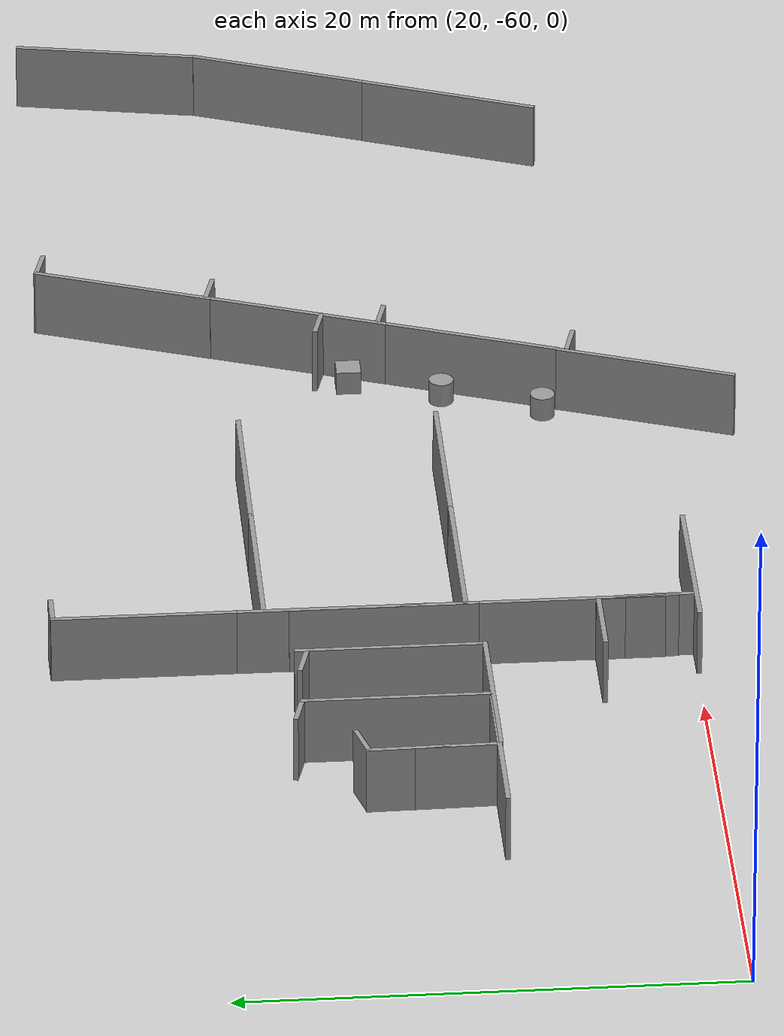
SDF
<sdf version="1.7">
 <world name="default">
  <model name="ground_plane">
   <static>1</static>
   <link name="link">
    <collision name="collision">
     <geometry><plane><normal>0 0 1</normal><size>100 100</size></plane></geometry>
     <surface>
      <contact><collide_bitmask>65535</collide_bitmask></contact>
      <friction><ode><mu>100</mu><mu2>50</mu2></ode></friction>
     </surface>
    </collision>
    <visual name="visual">
     <cast_shadows>0</cast_shadows>
     <geometry><plane><normal>0 0 1</normal><size>100 100</size></plane></geometry>
     <material>
      <script><uri>file://media/materials/scripts/gazebo.material</uri><name>Gazebo/Grey</name></script>
     </material>
    </visual>
   </link>
  </model>
  <model name="grey_wall_1_clone_clone_1_clone_clone_0_clone_clone_6">
   <static>1</static>
   <link name="link">
    <pose>0 0 1.4 0 -0 0</pose>
    <collision name="collision"><geometry><box><size>7.5 0.2 2.8</size></box></geometry></collision>
    <visual name="visual">
     <cast_shadows>0</cast_shadows>
     <geometry><box><size>7.5 0.2 2.8</size></box></geometry>
     <material>
      <script>
       <uri>model://grey_wall/materials/scripts</uri>
       <uri>model://grey_wall/materials/textures</uri>
       <name>vrc/grey_wall</name>
      </script>
     </material>
    </visual>
   </link>
   <pose>46.2485 -60.0519 0 0 -0 0</pose>
  </model>
  <model name="grey_wall_1_clone_clone_1_clone_clone_0_clone_clone_7_clone_clone_clone">
   <static>1</static>
   <link name="link">
    <pose>0 0 1.4 0 -0 0</pose>
    <collision name="collision"><geometry><box><size>7.5 0.2 2.8</size></box></geometry></collision>
    <visual name="visual">
     <cast_shadows>0</cast_shadows>
     <geometry><box><size>7.5 0.2 2.8</size></box></geometry>
     <material>
      <script>
       <uri>model://grey_wall/materials/scripts</uri>
       <uri>model://grey_wall/materials/textures</uri>
       <name>vrc/grey_wall</name>
      </script>
     </material>
    </visual>
   </link>
   <pose>33.1395 -51.3744 0 0 -0 0</pose>
  </model>
  <model name="half_grey_wall_clone_clone_0_clone_clone_clone_clone_0_clone_0_clone_clone_1_clone_clone_clone_1">
   <link name="link">
    <pose>0 0 1.4 0 -0 0</pose>
    <inertial>
     <mass>1</mass>
     <inertia><ixx>1</ixx><ixy>0</ixy><ixz>0</ixz><iyy>1</iyy><iyz>0</iyz><izz>1</izz></inertia>
    </inertial>
    <visual name="visual">
     <cast_shadows>0</cast_shadows>
     <geometry><box><size>3.3 0.2 2.8</size></box></geometry>
     <material>
      <script>
       <uri>model://grey_wall/materials/scripts</uri>
       <uri>model://grey_wall/materials/textures</uri>
       <name>vrc/grey_wall</name>
      </script>
      <shader type="pixel"><normal_map>__default__</normal_map></shader>
      <ambient>1 1 1 1</ambient>
      <diffuse>1 1 1 1</diffuse>
      <specular>0 0 0 1</specular>
      <emissive>0 0 0 1</emissive>
     </material>
    </visual>
    <collision name="collision">
     <geometry><box><size>3.3 0.2 2.8</size></box></geometry>
     <surface>
      <friction>
       <ode><mu>1</mu><mu2>1</mu2><fdir1>0 0 0</fdir1><slip1>0</slip1><slip2>0</slip2></ode>
       <torsional>
        <coefficient>1</coefficient>
        <patch_radius>0</patch_radius>
        <surface_radius>0</surface_radius>
        <use_patch_radius>1</use_patch_radius>
        <ode><slip>0</slip></ode>
       </torsional>
      </friction>
      <bounce><restitution_coefficient>0</restitution_coefficient><threshold>1e+06</threshold></bounce>
      <contact>
       <collide_without_contact>0</collide_without_contact>
       <collide_without_contact_bitmask>1</collide_without_contact_bitmask>
       <collide_bitmask>1</collide_bitmask>
       <ode>
        <soft_cfm>0</soft_cfm>
        <soft_erp>0.2</soft_erp>
        <kp>1e+13</kp>
        <kd>1</kd>
        <max_vel>0.01</max_vel>
        <min_depth>0</min_depth>
       </ode>
       <bullet>
        <split_impulse>1</split_impulse>
        <split_impulse_penetration_threshold>-0.01</split_impulse_penetration_threshold>
        <soft_cfm>0</soft_cfm>
        <soft_erp>0.2</soft_erp>
        <kp>1e+13</kp>
        <kd>1</kd>
       </bullet>
      </contact>
     </surface>
    </collision>
   </link>
   <static>1</static>
   <pose>43.9968 -58.4516 -0 0 0 -1.5482</pose>
  </model>
  <model name="half_grey_wall_clone_clone_0_clone_clone_clone_clone_0_clone_0_clone_clone_1_clone_clone_clone_2">
   <link name="link">
    <pose>0 0 1.4 0 -0 0</pose>
    <inertial>
     <mass>1</mass>
     <inertia><ixx>1</ixx><ixy>0</ixy><ixz>0</ixz><iyy>1</iyy><iyz>0</iyz><izz>1</izz></inertia>
    </inertial>
    <visual name="visual">
     <cast_shadows>0</cast_shadows>
     <geometry><box><size>3.3 0.2 2.8</size></box></geometry>
     <material>
      <script>
       <uri>model://grey_wall/materials/scripts</uri>
       <uri>model://grey_wall/materials/textures</uri>
       <name>vrc/grey_wall</name>
      </script>
      <shader type="pixel"><normal_map>__default__</normal_map></shader>
      <ambient>1 1 1 1</ambient>
      <diffuse>1 1 1 1</diffuse>
      <specular>0 0 0 1</specular>
      <emissive>0 0 0 1</emissive>
     </material>
    </visual>
    <collision name="collision">
     <geometry><box><size>3.3 0.2 2.8</size></box></geometry>
     <surface>
      <friction>
       <ode><mu>1</mu><mu2>1</mu2><fdir1>0 0 0</fdir1><slip1>0</slip1><slip2>0</slip2></ode>
       <torsional>
        <coefficient>1</coefficient>
        <patch_radius>0</patch_radius>
        <surface_radius>0</surface_radius>
        <use_patch_radius>1</use_patch_radius>
        <ode><slip>0</slip></ode>
       </torsional>
      </friction>
      <bounce><restitution_coefficient>0</restitution_coefficient><threshold>1e+06</threshold></bounce>
      <contact>
       <collide_without_contact>0</collide_without_contact>
       <collide_without_contact_bitmask>1</collide_without_contact_bitmask>
       <collide_bitmask>1</collide_bitmask>
       <ode>
        <soft_cfm>0</soft_cfm>
        <soft_erp>0.2</soft_erp>
        <kp>1e+13</kp>
        <kd>1</kd>
        <max_vel>0.01</max_vel>
        <min_depth>0</min_depth>
       </ode>
       <bullet>
        <split_impulse>1</split_impulse>
        <split_impulse_penetration_threshold>-0.01</split_impulse_penetration_threshold>
        <soft_cfm>0</soft_cfm>
        <soft_erp>0.2</soft_erp>
        <kp>1e+13</kp>
        <kd>1</kd>
       </bullet>
      </contact>
     </surface>
    </collision>
   </link>
   <static>1</static>
   <pose>43.9468 -57.7056 -0 0 0 -1.5482</pose>
  </model>
  <model name="grey_wall_0_clone_0_clone_clone_clone_0_clone_clone_0_clone_4_clone_0">
   <static>1</static>
   <link name="link">
    <pose>0 0 1.4 0 -0 0</pose>
    <collision name="collision"><geometry><box><size>7.5 0.2 2.8</size></box></geometry></collision>
    <visual name="visual">
     <cast_shadows>0</cast_shadows>
     <geometry><box><size>7.5 0.2 2.8</size></box></geometry>
     <material>
      <script>
       <uri>model://grey_wall/materials/scripts</uri>
       <uri>model://grey_wall/materials/textures</uri>
       <name>vrc/grey_wall</name>
      </script>
     </material>
    </visual>
   </link>
   <pose>43.9361 -55.0752 0 0 -0 1.5708</pose>
  </model>
  <model name="grey_wall_1_clone_clone_1_clone_clone_0_clone_clone_7_clone_clone_clone_clone_0">
   <static>1</static>
   <link name="link">
    <pose>0 0 1.4 0 -0 0</pose>
    <collision name="collision"><geometry><box><size>7.5 0.2 2.8</size></box></geometry></collision>
    <visual name="visual">
     <cast_shadows>0</cast_shadows>
     <geometry><box><size>7.5 0.2 2.8</size></box></geometry>
     <material>
      <script>
       <uri>model://grey_wall/materials/scripts</uri>
       <uri>model://grey_wall/materials/textures</uri>
       <name>vrc/grey_wall</name>
      </script>
     </material>
    </visual>
   </link>
   <pose>37.2341 -51.4253 0 0 -0 0</pose>
  </model>
  <model name="grey_wall_0_clone_clone_clone_0_clone_clone_clone_0_clone_1_clone">
   <static>1</static>
   <link name="link">
    <pose>0 0 1.4 0 -0 0</pose>
    <collision name="collision"><geometry><box><size>7.5 0.2 2.8</size></box></geometry></collision>
    <visual name="visual">
     <cast_shadows>0</cast_shadows>
     <geometry><box><size>7.5 0.2 2.8</size></box></geometry>
     <material>
      <script>
       <uri>model://grey_wall/materials/scripts</uri>
       <uri>model://grey_wall/materials/textures</uri>
       <name>vrc/grey_wall</name>
      </script>
     </material>
    </visual>
   </link>
   <pose>40.8766 -47.6667 0 0 -0 1.5708</pose>
  </model>
  <model name="grey_wall_0_clone_clone_clone_0_clone_clone_clone_0_clone_0_clone_clone_0">
   <static>1</static>
   <link name="link">
    <pose>0 0 1.4 0 -0 0</pose>
    <collision name="collision"><geometry><box><size>7.5 0.2 2.8</size></box></geometry></collision>
    <visual name="visual">
     <cast_shadows>0</cast_shadows>
     <geometry><box><size>7.5 0.2 2.8</size></box></geometry>
     <material>
      <script>
       <uri>model://grey_wall/materials/scripts</uri>
       <uri>model://grey_wall/materials/textures</uri>
       <name>vrc/grey_wall</name>
      </script>
     </material>
    </visual>
   </link>
   <pose>37.1366 -47.6419 0 0 -0 1.5708</pose>
  </model>
  <model name="half_grey_wall_clone_clone_0_clone_clone_clone_clone_0_clone_0_clone_clone_1_clone_clone_clone_0_clone_4">
   <link name="link">
    <pose>0 0 1.4 0 -0 0</pose>
    <inertial>
     <mass>1</mass>
     <inertia><ixx>1</ixx><ixy>0</ixy><ixz>0</ixz><iyy>1</iyy><iyz>0</iyz><izz>1</izz></inertia>
    </inertial>
    <visual name="visual">
     <cast_shadows>0</cast_shadows>
     <geometry><box><size>3.3 0.2 2.8</size></box></geometry>
     <material>
      <script>
       <uri>model://grey_wall/materials/scripts</uri>
       <uri>model://grey_wall/materials/textures</uri>
       <name>vrc/grey_wall</name>
      </script>
      <shader type="pixel"><normal_map>__default__</normal_map></shader>
      <ambient>1 1 1 1</ambient>
      <diffuse>1 1 1 1</diffuse>
      <specular>0 0 0 1</specular>
      <emissive>0 0 0 1</emissive>
     </material>
    </visual>
    <collision name="collision">
     <geometry><box><size>3.3 0.2 2.8</size></box></geometry>
     <surface>
      <friction>
       <ode><mu>1</mu><mu2>1</mu2><fdir1>0 0 0</fdir1><slip1>0</slip1><slip2>0</slip2></ode>
       <torsional>
        <coefficient>1</coefficient>
        <patch_radius>0</patch_radius>
        <surface_radius>0</surface_radius>
        <use_patch_radius>1</use_patch_radius>
        <ode><slip>0</slip></ode>
       </torsional>
      </friction>
      <bounce><restitution_coefficient>0</restitution_coefficient><threshold>1e+06</threshold></bounce>
      <contact>
       <collide_without_contact>0</collide_without_contact>
       <collide_without_contact_bitmask>1</collide_without_contact_bitmask>
       <collide_bitmask>1</collide_bitmask>
       <ode>
        <soft_cfm>0</soft_cfm>
        <soft_erp>0.2</soft_erp>
        <kp>1e+13</kp>
        <kd>1</kd>
        <max_vel>0.01</max_vel>
        <min_depth>0</min_depth>
       </ode>
       <bullet>
        <split_impulse>1</split_impulse>
        <split_impulse_penetration_threshold>-0.01</split_impulse_penetration_threshold>
        <soft_cfm>0</soft_cfm>
        <soft_erp>0.2</soft_erp>
        <kp>1e+13</kp>
        <kd>1</kd>
       </bullet>
      </contact>
     </surface>
    </collision>
   </link>
   <static>1</static>
   <pose>33.3861 -49.7236 -0 0 0 -1.5482</pose>
  </model>
  <model name="half_grey_wall_clone_clone_0_clone_clone_clone_clone_0_clone_0_clone_clone_1_clone_clone_clone_0_clone_5">
   <link name="link">
    <pose>0 0 1.4 0 -0 0</pose>
    <inertial>
     <mass>1</mass>
     <inertia><ixx>1</ixx><ixy>0</ixy><ixz>0</ixz><iyy>1</iyy><iyz>0</iyz><izz>1</izz></inertia>
    </inertial>
    <visual name="visual">
     <cast_shadows>0</cast_shadows>
     <geometry><box><size>3.3 0.2 2.8</size></box></geometry>
     <material>
      <script>
       <uri>model://grey_wall/materials/scripts</uri>
       <uri>model://grey_wall/materials/textures</uri>
       <name>vrc/grey_wall</name>
      </script>
      <shader type="pixel"><normal_map>__default__</normal_map></shader>
      <ambient>1 1 1 1</ambient>
      <diffuse>1 1 1 1</diffuse>
      <specular>0 0 0 1</specular>
      <emissive>0 0 0 1</emissive>
     </material>
    </visual>
    <collision name="collision">
     <geometry><box><size>3.3 0.2 2.8</size></box></geometry>
     <surface>
      <friction>
       <ode><mu>1</mu><mu2>1</mu2><fdir1>0 0 0</fdir1><slip1>0</slip1><slip2>0</slip2></ode>
       <torsional>
        <coefficient>1</coefficient>
        <patch_radius>0</patch_radius>
        <surface_radius>0</surface_radius>
        <use_patch_radius>1</use_patch_radius>
        <ode><slip>0</slip></ode>
       </torsional>
      </friction>
      <bounce><restitution_coefficient>0</restitution_coefficient><threshold>1e+06</threshold></bounce>
      <contact>
       <collide_without_contact>0</collide_without_contact>
       <collide_without_contact_bitmask>1</collide_without_contact_bitmask>
       <collide_bitmask>1</collide_bitmask>
       <ode>
        <soft_cfm>0</soft_cfm>
        <soft_erp>0.2</soft_erp>
        <kp>1e+13</kp>
        <kd>1</kd>
        <max_vel>0.01</max_vel>
        <min_depth>0</min_depth>
       </ode>
       <bullet>
        <split_impulse>1</split_impulse>
        <split_impulse_penetration_threshold>-0.01</split_impulse_penetration_threshold>
        <soft_cfm>0</soft_cfm>
        <soft_erp>0.2</soft_erp>
        <kp>1e+13</kp>
        <kd>1</kd>
       </bullet>
      </contact>
     </surface>
    </collision>
   </link>
   <static>1</static>
   <pose>33.3502 -47.8154 -0 0 0 -1.5482</pose>
  </model>
  <model name="grey_wall_0_clone_0_clone_clone_clone_0_clone_clone_clone_0_clone_clone_clone">
   <static>1</static>
   <link name="link">
    <pose>0 0 1.4 0 -0 0</pose>
    <collision name="collision"><geometry><box><size>7.5 0.2 2.8</size></box></geometry></collision>
    <visual name="visual">
     <cast_shadows>0</cast_shadows>
     <geometry><box><size>7.5 0.2 2.8</size></box></geometry>
     <material>
      <script>
       <uri>model://grey_wall/materials/scripts</uri>
       <uri>model://grey_wall/materials/textures</uri>
       <name>vrc/grey_wall</name>
      </script>
     </material>
    </visual>
   </link>
   <pose>43.9315 -47.6741 0 0 -0 1.5708</pose>
  </model>
  <model name="grey_wall_0_clone_0_clone_clone_clone_0_clone_clone_clone_0_clone_clone_clone_0">
   <static>1</static>
   <link name="link">
    <pose>0 0 1.4 0 -0 0</pose>
    <collision name="collision"><geometry><box><size>7.5 0.2 2.8</size></box></geometry></collision>
    <visual name="visual">
     <cast_shadows>0</cast_shadows>
     <geometry><box><size>7.5 0.2 2.8</size></box></geometry>
     <material>
      <script>
       <uri>model://grey_wall/materials/scripts</uri>
       <uri>model://grey_wall/materials/textures</uri>
       <name>vrc/grey_wall</name>
      </script>
     </material>
    </visual>
   </link>
   <pose>43.9405 -45.6127 0 0 -0 1.5708</pose>
  </model>
  <model name="half_grey_wall_clone_clone_clone_0_clone_clone_0_clone_clone_0_clone_0_clone_9_clone_clone">
   <link name="link">
    <pose>0 0 1.4 0 -0 0</pose>
    <inertial>
     <mass>1</mass>
     <inertia><ixx>1</ixx><ixy>0</ixy><ixz>0</ixz><iyy>1</iyy><iyz>0</iyz><izz>1</izz></inertia>
    </inertial>
    <visual name="visual">
     <cast_shadows>0</cast_shadows>
     <geometry><box><size>1.5 0.2 2.8</size></box></geometry>
     <material>
      <script>
       <uri>model://grey_wall/materials/scripts</uri>
       <uri>model://grey_wall/materials/textures</uri>
       <name>vrc/grey_wall</name>
      </script>
      <shader type="pixel"><normal_map>__default__</normal_map></shader>
      <ambient>1 1 1 1</ambient>
      <diffuse>1 1 1 1</diffuse>
      <specular>0 0 0 1</specular>
      <emissive>0 0 0 1</emissive>
     </material>
    </visual>
    <collision name="collision">
     <geometry><box><size>1.5 0.2 2.8</size></box></geometry>
     <surface>
      <friction>
       <ode><mu>1</mu><mu2>1</mu2><fdir1>0 0 0</fdir1><slip1>0</slip1><slip2>0</slip2></ode>
       <torsional>
        <coefficient>1</coefficient>
        <patch_radius>0</patch_radius>
        <surface_radius>0</surface_radius>
        <use_patch_radius>1</use_patch_radius>
        <ode><slip>0</slip></ode>
       </torsional>
      </friction>
      <bounce><restitution_coefficient>0</restitution_coefficient><threshold>1e+06</threshold></bounce>
      <contact>
       <collide_without_contact>0</collide_without_contact>
       <collide_without_contact_bitmask>1</collide_without_contact_bitmask>
       <collide_bitmask>1</collide_bitmask>
       <ode>
        <soft_cfm>0</soft_cfm>
        <soft_erp>0.2</soft_erp>
        <kp>1e+13</kp>
        <kd>1</kd>
        <max_vel>0.01</max_vel>
        <min_depth>0</min_depth>
       </ode>
       <bullet>
        <split_impulse>1</split_impulse>
        <split_impulse_penetration_threshold>-0.01</split_impulse_penetration_threshold>
        <soft_cfm>0</soft_cfm>
        <soft_erp>0.2</soft_erp>
        <kp>1e+13</kp>
        <kd>1</kd>
       </bullet>
      </contact>
     </surface>
    </collision>
   </link>
   <static>1</static>
   <pose>34.0742 -46.0681 0 0 0 -2.87494</pose>
  </model>
  <model name="half_grey_wall_clone_clone_clone_0_clone_clone_0_clone_clone_0_clone_0_clone_9_clone_0_clone">
   <link name="link">
    <pose>0 0 1.4 0 -0 0</pose>
    <inertial>
     <mass>1</mass>
     <inertia><ixx>1</ixx><ixy>0</ixy><ixz>0</ixz><iyy>1</iyy><iyz>0</iyz><izz>1</izz></inertia>
    </inertial>
    <visual name="visual">
     <cast_shadows>0</cast_shadows>
     <geometry><box><size>1.5 0.2 2.8</size></box></geometry>
     <material>
      <script>
       <uri>model://grey_wall/materials/scripts</uri>
       <uri>model://grey_wall/materials/textures</uri>
       <name>vrc/grey_wall</name>
      </script>
      <shader type="pixel"><normal_map>__default__</normal_map></shader>
      <ambient>1 1 1 1</ambient>
      <diffuse>1 1 1 1</diffuse>
      <specular>0 0 0 1</specular>
      <emissive>0 0 0 1</emissive>
     </material>
    </visual>
    <collision name="collision">
     <geometry><box><size>1.5 0.2 2.8</size></box></geometry>
     <surface>
      <friction>
       <ode><mu>1</mu><mu2>1</mu2><fdir1>0 0 0</fdir1><slip1>0</slip1><slip2>0</slip2></ode>
       <torsional>
        <coefficient>1</coefficient>
        <patch_radius>0</patch_radius>
        <surface_radius>0</surface_radius>
        <use_patch_radius>1</use_patch_radius>
        <ode><slip>0</slip></ode>
       </torsional>
      </friction>
      <bounce><restitution_coefficient>0</restitution_coefficient><threshold>1e+06</threshold></bounce>
      <contact>
       <collide_without_contact>0</collide_without_contact>
       <collide_without_contact_bitmask>1</collide_without_contact_bitmask>
       <collide_bitmask>1</collide_bitmask>
       <ode>
        <soft_cfm>0</soft_cfm>
        <soft_erp>0.2</soft_erp>
        <kp>1e+13</kp>
        <kd>1</kd>
        <max_vel>0.01</max_vel>
        <min_depth>0</min_depth>
       </ode>
       <bullet>
        <split_impulse>1</split_impulse>
        <split_impulse_penetration_threshold>-0.01</split_impulse_penetration_threshold>
        <soft_cfm>0</soft_cfm>
        <soft_erp>0.2</soft_erp>
        <kp>1e+13</kp>
        <kd>1</kd>
       </bullet>
      </contact>
     </surface>
    </collision>
   </link>
   <static>1</static>
   <pose>36.4844 -43.7961 0 0 -0 2.88811</pose>
  </model>
  <model name="half_grey_wall_clone_clone_clone_0_clone_clone_0_clone_clone_0_clone_0_clone_9_clone_0_clone_clone">
   <link name="link">
    <pose>0 0 1.4 0 -0 0</pose>
    <inertial>
     <mass>1</mass>
     <inertia><ixx>1</ixx><ixy>0</ixy><ixz>0</ixz><iyy>1</iyy><iyz>0</iyz><izz>1</izz></inertia>
    </inertial>
    <visual name="visual">
     <cast_shadows>0</cast_shadows>
     <geometry><box><size>1.5 0.2 2.8</size></box></geometry>
     <material>
      <script>
       <uri>model://grey_wall/materials/scripts</uri>
       <uri>model://grey_wall/materials/textures</uri>
       <name>vrc/grey_wall</name>
      </script>
      <shader type="pixel"><normal_map>__default__</normal_map></shader>
      <ambient>1 1 1 1</ambient>
      <diffuse>1 1 1 1</diffuse>
      <specular>0 0 0 1</specular>
      <emissive>0 0 0 1</emissive>
     </material>
    </visual>
    <collision name="collision">
     <geometry><box><size>1.5 0.2 2.8</size></box></geometry>
     <surface>
      <friction>
       <ode><mu>1</mu><mu2>1</mu2><fdir1>0 0 0</fdir1><slip1>0</slip1><slip2>0</slip2></ode>
       <torsional>
        <coefficient>1</coefficient>
        <patch_radius>0</patch_radius>
        <surface_radius>0</surface_radius>
        <use_patch_radius>1</use_patch_radius>
        <ode><slip>0</slip></ode>
       </torsional>
      </friction>
      <bounce><restitution_coefficient>0</restitution_coefficient><threshold>1e+06</threshold></bounce>
      <contact>
       <collide_without_contact>0</collide_without_contact>
       <collide_without_contact_bitmask>1</collide_without_contact_bitmask>
       <collide_bitmask>1</collide_bitmask>
       <ode>
        <soft_cfm>0</soft_cfm>
        <soft_erp>0.2</soft_erp>
        <kp>1e+13</kp>
        <kd>1</kd>
        <max_vel>0.01</max_vel>
        <min_depth>0</min_depth>
       </ode>
       <bullet>
        <split_impulse>1</split_impulse>
        <split_impulse_penetration_threshold>-0.01</split_impulse_penetration_threshold>
        <soft_cfm>0</soft_cfm>
        <soft_erp>0.2</soft_erp>
        <kp>1e+13</kp>
        <kd>1</kd>
       </bullet>
      </contact>
     </surface>
    </collision>
   </link>
   <static>1</static>
   <pose>40.0808 -44.2171 0 0 -0 2.88811</pose>
  </model>
  <model name="grey_wall_1_clone_clone_1_clone_clone_0_clone_clone_6_clone_0">
   <static>1</static>
   <link name="link">
    <pose>0 0 1.4 0 -0 0</pose>
    <collision name="collision"><geometry><box><size>7.5 0.2 2.8</size></box></geometry></collision>
    <visual name="visual">
     <cast_shadows>0</cast_shadows>
     <geometry><box><size>7.5 0.2 2.8</size></box></geometry>
     <material>
      <script>
       <uri>model://grey_wall/materials/scripts</uri>
       <uri>model://grey_wall/materials/textures</uri>
       <name>vrc/grey_wall</name>
      </script>
     </material>
    </visual>
   </link>
   <pose>47.6364 -50.904 0 0 -0 0</pose>
  </model>
  <model name="grey_wall_1_clone_clone_1_clone_clone_0_clone_clone_6_clone_1">
   <static>1</static>
   <link name="link">
    <pose>0 0 1.4 0 -0 0</pose>
    <collision name="collision"><geometry><box><size>7.5 0.2 2.8</size></box></geometry></collision>
    <visual name="visual">
     <cast_shadows>0</cast_shadows>
     <geometry><box><size>7.5 0.2 2.8</size></box></geometry>
     <material>
      <script>
       <uri>model://grey_wall/materials/scripts</uri>
       <uri>model://grey_wall/materials/textures</uri>
       <name>vrc/grey_wall</name>
      </script>
     </material>
    </visual>
   </link>
   <pose>55.0716 -50.8995 0 0 -0 0</pose>
  </model>
  <model name="grey_wall_1_clone_clone_1_clone_clone_0_clone_clone_6_clone_0_clone">
   <static>1</static>
   <link name="link">
    <pose>0 0 1.4 0 -0 0</pose>
    <collision name="collision"><geometry><box><size>7.5 0.2 2.8</size></box></geometry></collision>
    <visual name="visual">
     <cast_shadows>0</cast_shadows>
     <geometry><box><size>7.5 0.2 2.8</size></box></geometry>
     <material>
      <script>
       <uri>model://grey_wall/materials/scripts</uri>
       <uri>model://grey_wall/materials/textures</uri>
       <name>vrc/grey_wall</name>
      </script>
     </material>
    </visual>
   </link>
   <pose>54.9915 -42.9145 0 0 -0 0</pose>
  </model>
  <model name="grey_wall_0_clone_0_clone_clone_clone_0_clone_clone_clone_0_clone_clone_clone_0_clone">
   <static>1</static>
   <link name="link">
    <pose>0 0 1.4 0 -0 0</pose>
    <collision name="collision"><geometry><box><size>7.5 0.2 2.8</size></box></geometry></collision>
    <visual name="visual">
     <cast_shadows>0</cast_shadows>
     <geometry><box><size>7.5 0.2 2.8</size></box></geometry>
     <material>
      <script>
       <uri>model://grey_wall/materials/scripts</uri>
       <uri>model://grey_wall/materials/textures</uri>
       <name>vrc/grey_wall</name>
      </script>
     </material>
    </visual>
   </link>
   <pose>43.9425 -38.2688 0 0 -0 1.5708</pose>
  </model>
  <model name="half_grey_wall_clone_clone_clone_0_clone_clone_0_clone_clone_0_clone_0_clone_10">
   <link name="link">
    <pose>0 0 1.4 0 -0 0</pose>
    <inertial>
     <mass>1</mass>
     <inertia><ixx>1</ixx><ixy>0</ixy><ixz>0</ixz><iyy>1</iyy><iyz>0</iyz><izz>1</izz></inertia>
    </inertial>
    <visual name="visual">
     <cast_shadows>0</cast_shadows>
     <geometry><box><size>1.5 0.2 2.8</size></box></geometry>
     <material>
      <script>
       <uri>model://grey_wall/materials/scripts</uri>
       <uri>model://grey_wall/materials/textures</uri>
       <name>vrc/grey_wall</name>
      </script>
      <shader type="pixel"><normal_map>__default__</normal_map></shader>
      <ambient>1 1 1 1</ambient>
      <diffuse>1 1 1 1</diffuse>
      <specular>0 0 0 1</specular>
      <emissive>0 0 0 1</emissive>
     </material>
    </visual>
    <collision name="collision">
     <geometry><box><size>1.5 0.2 2.8</size></box></geometry>
     <surface>
      <friction>
       <ode><mu>1</mu><mu2>1</mu2><fdir1>0 0 0</fdir1><slip1>0</slip1><slip2>0</slip2></ode>
       <torsional>
        <coefficient>1</coefficient>
        <patch_radius>0</patch_radius>
        <surface_radius>0</surface_radius>
        <use_patch_radius>1</use_patch_radius>
        <ode><slip>0</slip></ode>
       </torsional>
      </friction>
      <bounce><restitution_coefficient>0</restitution_coefficient><threshold>1e+06</threshold></bounce>
      <contact>
       <collide_without_contact>0</collide_without_contact>
       <collide_without_contact_bitmask>1</collide_without_contact_bitmask>
       <collide_bitmask>1</collide_bitmask>
       <ode>
        <soft_cfm>0</soft_cfm>
        <soft_erp>0.2</soft_erp>
        <kp>1e+13</kp>
        <kd>1</kd>
        <max_vel>0.01</max_vel>
        <min_depth>0</min_depth>
       </ode>
       <bullet>
        <split_impulse>1</split_impulse>
        <split_impulse_penetration_threshold>-0.01</split_impulse_penetration_threshold>
        <soft_cfm>0</soft_cfm>
        <soft_erp>0.2</soft_erp>
        <kp>1e+13</kp>
        <kd>1</kd>
       </bullet>
      </contact>
     </surface>
    </collision>
   </link>
   <static>1</static>
   <pose>44.6459 -34.5967 0 0 0 -3.13942</pose>
  </model>
  <model name="grey_wall_0_clone_0_clone_clone_clone_0_clone_clone_0_clone_2_clone_clone">
   <static>1</static>
   <link name="link">
    <pose>0 0 1.4 0 -0 0</pose>
    <collision name="collision"><geometry><box><size>7.5 0.2 2.8</size></box></geometry></collision>
    <visual name="visual">
     <cast_shadows>0</cast_shadows>
     <geometry><box><size>7.5 0.2 2.8</size></box></geometry>
     <material>
      <script>
       <uri>model://grey_wall/materials/scripts</uri>
       <uri>model://grey_wall/materials/textures</uri>
       <name>vrc/grey_wall</name>
      </script>
     </material>
    </visual>
   </link>
   <pose>64.7266 -52.7944 0 0 -0 1.21472</pose>
  </model>
  <model name="half_grey_wall_clone_clone_clone_0_clone_clone_0_clone_clone_0_clone_0_clone_9_clone_0_clone_clone_clone_0">
   <link name="link">
    <pose>0 0 1.4 0 -0 0</pose>
    <inertial>
     <mass>1</mass>
     <inertia><ixx>1</ixx><ixy>0</ixy><ixz>0</ixz><iyy>1</iyy><iyz>0</iyz><izz>1</izz></inertia>
    </inertial>
    <visual name="visual">
     <cast_shadows>0</cast_shadows>
     <geometry><box><size>1.5 0.2 2.8</size></box></geometry>
     <material>
      <script>
       <uri>model://grey_wall/materials/scripts</uri>
       <uri>model://grey_wall/materials/textures</uri>
       <name>vrc/grey_wall</name>
      </script>
      <shader type="pixel"><normal_map>__default__</normal_map></shader>
      <ambient>1 1 1 1</ambient>
      <diffuse>1 1 1 1</diffuse>
      <specular>0 0 0 1</specular>
      <emissive>0 0 0 1</emissive>
     </material>
    </visual>
    <collision name="collision">
     <geometry><box><size>1.5 0.2 2.8</size></box></geometry>
     <surface>
      <friction>
       <ode><mu>1</mu><mu2>1</mu2><fdir1>0 0 0</fdir1><slip1>0</slip1><slip2>0</slip2></ode>
       <torsional>
        <coefficient>1</coefficient>
        <patch_radius>0</patch_radius>
        <surface_radius>0</surface_radius>
        <use_patch_radius>1</use_patch_radius>
        <ode><slip>0</slip></ode>
       </torsional>
      </friction>
      <bounce><restitution_coefficient>0</restitution_coefficient><threshold>1e+06</threshold></bounce>
      <contact>
       <collide_without_contact>0</collide_without_contact>
       <collide_without_contact_bitmask>1</collide_without_contact_bitmask>
       <collide_bitmask>1</collide_bitmask>
       <ode>
        <soft_cfm>0</soft_cfm>
        <soft_erp>0.2</soft_erp>
        <kp>1e+13</kp>
        <kd>1</kd>
        <max_vel>0.01</max_vel>
        <min_depth>0</min_depth>
       </ode>
       <bullet>
        <split_impulse>1</split_impulse>
        <split_impulse_penetration_threshold>-0.01</split_impulse_penetration_threshold>
        <soft_cfm>0</soft_cfm>
        <soft_erp>0.2</soft_erp>
        <kp>1e+13</kp>
        <kd>1</kd>
       </bullet>
      </contact>
     </surface>
    </collision>
   </link>
   <static>1</static>
   <pose>66.747 -49.2833 0 0 -0 2.88811</pose>
  </model>
  <model name="grey_wall_0_clone_0_clone_clone_clone_0_clone_clone_0_clone_2_clone_clone_0_clone_3_clone">
   <static>1</static>
   <link name="link">
    <pose>0 0 1.4 0 -0 0</pose>
    <collision name="collision"><geometry><box><size>7.5 0.2 2.8</size></box></geometry></collision>
    <visual name="visual">
     <cast_shadows>0</cast_shadows>
     <geometry><box><size>7.5 0.2 2.8</size></box></geometry>
     <material>
      <script>
       <uri>model://grey_wall/materials/scripts</uri>
       <uri>model://grey_wall/materials/textures</uri>
       <name>vrc/grey_wall</name>
      </script>
     </material>
    </visual>
   </link>
   <pose>67.2674 -45.9405 0 0 -0 1.21472</pose>
  </model>
  <model name="unit_cylinder_0_clone">
   <pose>69.912 -41.6721 0.499994 -0 -0 -0</pose>
   <link name="link">
    <inertial>
     <mass>1</mass>
     <inertia><ixx>0.145833</ixx><ixy>0</ixy><ixz>0</ixz><iyy>0.145833</iyy><iyz>0</iyz><izz>0.125</izz></inertia>
    </inertial>
    <collision name="collision">
     <geometry><cylinder><radius>0.5</radius><length>1</length></cylinder></geometry>
    </collision>
    <visual name="visual">
     <geometry><cylinder><radius>0.5</radius><length>1</length></cylinder></geometry>
     <material>
      <script><name>Gazebo/Grey</name><uri>file://media/materials/scripts/gazebo.material</uri></script>
     </material>
    </visual>
   </link>
  </model>
  <model name="grey_wall_0_clone_0_clone_clone_clone_0_clone_clone_0_clone_2_clone_clone_0_clone_3_clone_clone">
   <static>1</static>
   <link name="link">
    <pose>0 0 1.4 0 -0 0</pose>
    <collision name="collision"><geometry><box><size>7.5 0.2 2.8</size></box></geometry></collision>
    <visual name="visual">
     <cast_shadows>0</cast_shadows>
     <geometry><box><size>7.5 0.2 2.8</size></box></geometry>
     <material>
      <script>
       <uri>model://grey_wall/materials/scripts</uri>
       <uri>model://grey_wall/materials/textures</uri>
       <name>vrc/grey_wall</name>
      </script>
     </material>
    </visual>
   </link>
   <pose>69.8544 -38.9559 0 0 -0 1.21472</pose>
  </model>
  <model name="unit_cylinder_0_clone_clone">
   <pose>71.6283 -36.722 0.499994 -0 -0 -0</pose>
   <link name="link">
    <inertial>
     <mass>1</mass>
     <inertia><ixx>0.145833</ixx><ixy>0</ixy><ixz>0</ixz><iyy>0.145833</iyy><iyz>0</iyz><izz>0.125</izz></inertia>
    </inertial>
    <collision name="collision">
     <geometry><cylinder><radius>0.5</radius><length>1</length></cylinder></geometry>
    </collision>
    <visual name="visual">
     <geometry><cylinder><radius>0.5</radius><length>1</length></cylinder></geometry>
     <material>
      <script><name>Gazebo/Grey</name><uri>file://media/materials/scripts/gazebo.material</uri></script>
     </material>
    </visual>
   </link>
  </model>
  <model name="half_grey_wall_clone_clone_clone_0_clone_clone_0_clone_clone_0_clone_0_clone_9_clone_0_clone_clone_clone_2_clone_clone_clone">
   <link name="link">
    <pose>0 0 1.4 0 -0 0</pose>
    <inertial>
     <mass>1</mass>
     <inertia><ixx>1</ixx><ixy>0</ixy><ixz>0</ixz><iyy>1</iyy><iyz>0</iyz><izz>1</izz></inertia>
    </inertial>
    <visual name="visual">
     <cast_shadows>0</cast_shadows>
     <geometry><box><size>1.5 0.2 2.8</size></box></geometry>
     <material>
      <script>
       <uri>model://grey_wall/materials/scripts</uri>
       <uri>model://grey_wall/materials/textures</uri>
       <name>vrc/grey_wall</name>
      </script>
      <shader type="pixel"><normal_map>__default__</normal_map></shader>
      <ambient>1 1 1 1</ambient>
      <diffuse>1 1 1 1</diffuse>
      <specular>0 0 0 1</specular>
      <emissive>0 0 0 1</emissive>
     </material>
    </visual>
    <collision name="collision">
     <geometry><box><size>1.5 0.2 2.8</size></box></geometry>
     <surface>
      <friction>
       <ode><mu>1</mu><mu2>1</mu2><fdir1>0 0 0</fdir1><slip1>0</slip1><slip2>0</slip2></ode>
       <torsional>
        <coefficient>1</coefficient>
        <patch_radius>0</patch_radius>
        <surface_radius>0</surface_radius>
        <use_patch_radius>1</use_patch_radius>
        <ode><slip>0</slip></ode>
       </torsional>
      </friction>
      <bounce><restitution_coefficient>0</restitution_coefficient><threshold>1e+06</threshold></bounce>
      <contact>
       <collide_without_contact>0</collide_without_contact>
       <collide_without_contact_bitmask>1</collide_without_contact_bitmask>
       <collide_bitmask>1</collide_bitmask>
       <ode>
        <soft_cfm>0</soft_cfm>
        <soft_erp>0.2</soft_erp>
        <kp>1e+13</kp>
        <kd>1</kd>
        <max_vel>0.01</max_vel>
        <min_depth>0</min_depth>
       </ode>
       <bullet>
        <split_impulse>1</split_impulse>
        <split_impulse_penetration_threshold>-0.01</split_impulse_penetration_threshold>
        <soft_cfm>0</soft_cfm>
        <soft_erp>0.2</soft_erp>
        <kp>1e+13</kp>
        <kd>1</kd>
       </bullet>
      </contact>
     </surface>
    </collision>
   </link>
   <static>1</static>
   <pose>71.8066 -35.6472 0 0 -0 2.88811</pose>
  </model>
  <model name="half_grey_wall_clone_clone_clone_0_clone_clone_0_clone_clone_0_clone_0_clone_9_clone_0_clone_clone_clone_2_clone_clone_clone_clone">
   <link name="link">
    <pose>0 0 1.4 0 -0 0</pose>
    <inertial>
     <mass>1</mass>
     <inertia><ixx>1</ixx><ixy>0</ixy><ixz>0</ixz><iyy>1</iyy><iyz>0</iyz><izz>1</izz></inertia>
    </inertial>
    <visual name="visual">
     <cast_shadows>0</cast_shadows>
     <geometry><box><size>1.5 0.2 2.8</size></box></geometry>
     <material>
      <script>
       <uri>model://grey_wall/materials/scripts</uri>
       <uri>model://grey_wall/materials/textures</uri>
       <name>vrc/grey_wall</name>
      </script>
      <shader type="pixel"><normal_map>__default__</normal_map></shader>
      <ambient>1 1 1 1</ambient>
      <diffuse>1 1 1 1</diffuse>
      <specular>0 0 0 1</specular>
      <emissive>0 0 0 1</emissive>
     </material>
    </visual>
    <collision name="collision">
     <geometry><box><size>1.5 0.2 2.8</size></box></geometry>
     <surface>
      <friction>
       <ode><mu>1</mu><mu2>1</mu2><fdir1>0 0 0</fdir1><slip1>0</slip1><slip2>0</slip2></ode>
       <torsional>
        <coefficient>1</coefficient>
        <patch_radius>0</patch_radius>
        <surface_radius>0</surface_radius>
        <use_patch_radius>1</use_patch_radius>
        <ode><slip>0</slip></ode>
       </torsional>
      </friction>
      <bounce><restitution_coefficient>0</restitution_coefficient><threshold>1e+06</threshold></bounce>
      <contact>
       <collide_without_contact>0</collide_without_contact>
       <collide_without_contact_bitmask>1</collide_without_contact_bitmask>
       <collide_bitmask>1</collide_bitmask>
       <ode>
        <soft_cfm>0</soft_cfm>
        <soft_erp>0.2</soft_erp>
        <kp>1e+13</kp>
        <kd>1</kd>
        <max_vel>0.01</max_vel>
        <min_depth>0</min_depth>
       </ode>
       <bullet>
        <split_impulse>1</split_impulse>
        <split_impulse_penetration_threshold>-0.01</split_impulse_penetration_threshold>
        <soft_cfm>0</soft_cfm>
        <soft_erp>0.2</soft_erp>
        <kp>1e+13</kp>
        <kd>1</kd>
       </bullet>
      </contact>
     </surface>
    </collision>
   </link>
   <static>1</static>
   <pose>69.384 -42.4529 0 0 -0 2.88811</pose>
  </model>
  <model name="half_grey_wall_clone_clone_clone_0_clone_clone_0_clone_clone_0_clone_0_clone_9_clone_0_clone_clone_clone_0_clone_clone">
   <link name="link">
    <pose>0 0 1.4 0 -0 0</pose>
    <inertial>
     <mass>1</mass>
     <inertia><ixx>1</ixx><ixy>0</ixy><ixz>0</ixz><iyy>1</iyy><iyz>0</iyz><izz>1</izz></inertia>
    </inertial>
    <visual name="visual">
     <cast_shadows>0</cast_shadows>
     <geometry><box><size>1.5 0.2 2.8</size></box></geometry>
     <material>
      <script>
       <uri>model://grey_wall/materials/scripts</uri>
       <uri>model://grey_wall/materials/textures</uri>
       <name>vrc/grey_wall</name>
      </script>
      <shader type="pixel"><normal_map>__default__</normal_map></shader>
      <ambient>1 1 1 1</ambient>
      <diffuse>1 1 1 1</diffuse>
      <specular>0 0 0 1</specular>
      <emissive>0 0 0 1</emissive>
     </material>
    </visual>
    <collision name="collision">
     <geometry><box><size>1.5 0.2 2.8</size></box></geometry>
     <surface>
      <friction>
       <ode><mu>1</mu><mu2>1</mu2><fdir1>0 0 0</fdir1><slip1>0</slip1><slip2>0</slip2></ode>
       <torsional>
        <coefficient>1</coefficient>
        <patch_radius>0</patch_radius>
        <surface_radius>0</surface_radius>
        <use_patch_radius>1</use_patch_radius>
        <ode><slip>0</slip></ode>
       </torsional>
      </friction>
      <bounce><restitution_coefficient>0</restitution_coefficient><threshold>1e+06</threshold></bounce>
      <contact>
       <collide_without_contact>0</collide_without_contact>
       <collide_without_contact_bitmask>1</collide_without_contact_bitmask>
       <collide_bitmask>1</collide_bitmask>
       <ode>
        <soft_cfm>0</soft_cfm>
        <soft_erp>0.2</soft_erp>
        <kp>1e+13</kp>
        <kd>1</kd>
        <max_vel>0.01</max_vel>
        <min_depth>0</min_depth>
       </ode>
       <bullet>
        <split_impulse>1</split_impulse>
        <split_impulse_penetration_threshold>-0.01</split_impulse_penetration_threshold>
        <soft_cfm>0</soft_cfm>
        <soft_erp>0.2</soft_erp>
        <kp>1e+13</kp>
        <kd>1</kd>
       </bullet>
      </contact>
     </surface>
    </collision>
   </link>
   <static>1</static>
   <pose>66.2497 -46.6975 0 0 -0 2.88811</pose>
  </model>
  <model name="unit_box_1">
   <pose>65.677 -47.8735 0.499995 -1e-05 -0 5e-06</pose>
   <link name="link">
    <inertial>
     <mass>1</mass>
     <inertia>
      <ixx>0.166667</ixx>
      <ixy>0</ixy>
      <ixz>0</ixz>
      <iyy>0.166667</iyy>
      <iyz>0</iyz>
      <izz>0.166667</izz>
     </inertia>
    </inertial>
    <collision name="collision"><geometry><box><size>1 1 1</size></box></geometry></collision>
    <visual name="visual">
     <geometry><box><size>1 1 1</size></box></geometry>
     <material>
      <script><name>Gazebo/Grey</name><uri>file://media/materials/scripts/gazebo.material</uri></script>
     </material>
    </visual>
   </link>
  </model>
  <model name="unit_cylinder_clone">
   <pose>64.3733 -51.5821 0.499996 0 -0 0</pose>
   <link name="link">
    <inertial>
     <mass>1</mass>
     <inertia><ixx>0.145833</ixx><ixy>0</ixy><ixz>0</ixz><iyy>0.145833</iyy><iyz>0</iyz><izz>0.125</izz></inertia>
    </inertial>
    <collision name="collision">
     <geometry><cylinder><radius>0.5</radius><length>1</length></cylinder></geometry>
    </collision>
    <visual name="visual">
     <geometry><cylinder><radius>0.5</radius><length>1</length></cylinder></geometry>
     <material>
      <script><name>Gazebo/Grey</name><uri>file://media/materials/scripts/gazebo.material</uri></script>
     </material>
    </visual>
   </link>
  </model>
  <model name="unit_cylinder_clone_0">
   <pose>62.9339 -55.5972 0.499996 0 -0 0</pose>
   <link name="link">
    <inertial>
     <mass>1</mass>
     <inertia><ixx>0.145833</ixx><ixy>0</ixy><ixz>0</ixz><iyy>0.145833</iyy><iyz>0</iyz><izz>0.125</izz></inertia>
    </inertial>
    <collision name="collision">
     <geometry><cylinder><radius>0.5</radius><length>1</length></cylinder></geometry>
    </collision>
    <visual name="visual">
     <geometry><cylinder><radius>0.5</radius><length>1</length></cylinder></geometry>
     <material>
      <script><name>Gazebo/Grey</name><uri>file://media/materials/scripts/gazebo.material</uri></script>
     </material>
    </visual>
   </link>
  </model>
  <model name="half_grey_wall_clone_clone_clone_0_clone_clone_0_clone_clone_0_clone_0_clone_9_clone_0_clone_clone_clone_0_clone">
   <link name="link">
    <pose>0 0 1.4 0 -0 0</pose>
    <inertial>
     <mass>1</mass>
     <inertia><ixx>1</ixx><ixy>0</ixy><ixz>0</ixz><iyy>1</iyy><iyz>0</iyz><izz>1</izz></inertia>
    </inertial>
    <visual name="visual">
     <cast_shadows>0</cast_shadows>
     <geometry><box><size>1.5 0.2 2.8</size></box></geometry>
     <material>
      <script>
       <uri>model://grey_wall/materials/scripts</uri>
       <uri>model://grey_wall/materials/textures</uri>
       <name>vrc/grey_wall</name>
      </script>
      <shader type="pixel"><normal_map>__default__</normal_map></shader>
      <ambient>1 1 1 1</ambient>
      <diffuse>1 1 1 1</diffuse>
      <specular>0 0 0 1</specular>
      <emissive>0 0 0 1</emissive>
     </material>
    </visual>
    <collision name="collision">
     <geometry><box><size>1.5 0.2 2.8</size></box></geometry>
     <surface>
      <friction>
       <ode><mu>1</mu><mu2>1</mu2><fdir1>0 0 0</fdir1><slip1>0</slip1><slip2>0</slip2></ode>
       <torsional>
        <coefficient>1</coefficient>
        <patch_radius>0</patch_radius>
        <surface_radius>0</surface_radius>
        <use_patch_radius>1</use_patch_radius>
        <ode><slip>0</slip></ode>
       </torsional>
      </friction>
      <bounce><restitution_coefficient>0</restitution_coefficient><threshold>1e+06</threshold></bounce>
      <contact>
       <collide_without_contact>0</collide_without_contact>
       <collide_without_contact_bitmask>1</collide_without_contact_bitmask>
       <collide_bitmask>1</collide_bitmask>
       <ode>
        <soft_cfm>0</soft_cfm>
        <soft_erp>0.2</soft_erp>
        <kp>1e+13</kp>
        <kd>1</kd>
        <max_vel>0.01</max_vel>
        <min_depth>0</min_depth>
       </ode>
       <bullet>
        <split_impulse>1</split_impulse>
        <split_impulse_penetration_threshold>-0.01</split_impulse_penetration_threshold>
        <soft_cfm>0</soft_cfm>
        <soft_erp>0.2</soft_erp>
        <kp>1e+13</kp>
        <kd>1</kd>
       </bullet>
      </contact>
     </surface>
    </collision>
   </link>
   <static>1</static>
   <pose>64.1253 -56.7976 0 0 -0 2.88811</pose>
  </model>
  <model name="grey_wall_0_clone_0_clone_clone_clone_0_clone_clone_0_clone_2_clone_clone_clone_1">
   <static>1</static>
   <link name="link">
    <pose>0 0 1.4 0 -0 0</pose>
    <collision name="collision"><geometry><box><size>7.5 0.2 2.8</size></box></geometry></collision>
    <visual name="visual">
     <cast_shadows>0</cast_shadows>
     <geometry><box><size>7.5 0.2 2.8</size></box></geometry>
     <material>
      <script>
       <uri>model://grey_wall/materials/scripts</uri>
       <uri>model://grey_wall/materials/textures</uri>
       <name>vrc/grey_wall</name>
      </script>
     </material>
    </visual>
   </link>
   <pose>62.1181 -59.7084 0 0 -0 1.21472</pose>
  </model>
  <model name="grey_wall_1_clone_clone_1_clone_clone_0_clone_clone_6_clone_2_clone_0">
   <static>1</static>
   <link name="link">
    <pose>0 0 1.4 0 -0 0</pose>
    <collision name="collision"><geometry><box><size>7.5 0.2 2.8</size></box></geometry></collision>
    <visual name="visual">
     <cast_shadows>0</cast_shadows>
     <geometry><box><size>7.5 0.2 2.8</size></box></geometry>
     <material>
      <script>
       <uri>model://grey_wall/materials/scripts</uri>
       <uri>model://grey_wall/materials/textures</uri>
       <name>vrc/grey_wall</name>
      </script>
     </material>
    </visual>
   </link>
   <pose>47.6381 -42.9183 0 0 -0 0</pose>
  </model>
  <model name="grey_wall_1_clone_clone_1_clone_clone_0_clone_clone_clone_0_clone_4_clone_clone_0_clone_0_clone_2">
   <static>1</static>
   <link name="link">
    <pose>0 0 1.4 0 -0 0</pose>
    <collision name="collision"><geometry><box><size>7.5 0.2 2.8</size></box></geometry></collision>
    <visual name="visual">
     <cast_shadows>0</cast_shadows>
     <geometry><box><size>7.5 0.2 2.8</size></box></geometry>
     <material>
      <script>
       <uri>model://grey_wall/materials/scripts</uri>
       <uri>model://grey_wall/materials/textures</uri>
       <name>vrc/grey_wall</name>
      </script>
     </material>
    </visual>
   </link>
   <pose>84.7832 -53.5032 0 0 -0 1.20104</pose>
  </model>
  <model name="grey_wall_1_clone_clone_1_clone_clone_0_clone_clone_clone_0_clone_4_clone_clone_0_clone_0_clone_3">
   <static>1</static>
   <link name="link">
    <pose>0 0 1.4 0 -0 0</pose>
    <collision name="collision"><geometry><box><size>7.5 0.2 2.8</size></box></geometry></collision>
    <visual name="visual">
     <cast_shadows>0</cast_shadows>
     <geometry><box><size>7.5 0.2 2.8</size></box></geometry>
     <material>
      <script>
       <uri>model://grey_wall/materials/scripts</uri>
       <uri>model://grey_wall/materials/textures</uri>
       <name>vrc/grey_wall</name>
      </script>
     </material>
    </visual>
   </link>
   <pose>87.5054 -46.5132 0 0 -0 1.20104</pose>
  </model>
  <model name="grey_wall_0_clone_0_clone_clone_clone_0_clone_clone_0_clone_2_clone_clone_clone_0_clone_4_clone_clone_0">
   <static>1</static>
   <link name="link">
    <pose>0 0 1.4 0 -0 0</pose>
    <collision name="collision"><geometry><box><size>7.5 0.2 2.8</size></box></geometry></collision>
    <visual name="visual">
     <cast_shadows>0</cast_shadows>
     <geometry><box><size>7.5 0.2 2.8</size></box></geometry>
     <material>
      <script>
       <uri>model://grey_wall/materials/scripts</uri>
       <uri>model://grey_wall/materials/textures</uri>
       <name>vrc/grey_wall</name>
      </script>
     </material>
    </visual>
   </link>
   <pose>89.4956 -39.3843 0 0 -0 1.38847</pose>
  </model>
  <model name="unit_cylinder">
   <pose>44.9789 -35.5943 0.499997 3e-06 1e-06 -0</pose>
   <link name="link">
    <inertial>
     <mass>1</mass>
     <inertia><ixx>0.145833</ixx><ixy>0</ixy><ixz>0</ixz><iyy>0.145833</iyy><iyz>0</iyz><izz>0.125</izz></inertia>
    </inertial>
    <collision name="collision">
     <geometry><cylinder><radius>0.5</radius><length>1</length></cylinder></geometry>
    </collision>
    <visual name="visual">
     <geometry><cylinder><radius>0.5</radius><length>1</length></cylinder></geometry>
     <material>
      <script><name>Gazebo/Grey</name><uri>file://media/materials/scripts/gazebo.material</uri></script>
     </material>
    </visual>
   </link>
  </model>
  <model name="half_grey_wall_clone_clone_0_clone_clone_clone_clone_2_clone_clone_1_clone_clone_4">
   <link name="link">
    <pose>0 0 1.4 0 -0 0</pose>
    <inertial>
     <mass>1</mass>
     <inertia><ixx>1</ixx><ixy>0</ixy><ixz>0</ixz><iyy>1</iyy><iyz>0</iyz><izz>1</izz></inertia>
    </inertial>
    <visual name="visual">
     <cast_shadows>0</cast_shadows>
     <geometry><box><size>3.3 0.2 2.8</size></box></geometry>
     <material>
      <script>
       <uri>model://grey_wall/materials/scripts</uri>
       <uri>model://grey_wall/materials/textures</uri>
       <name>vrc/grey_wall</name>
      </script>
      <shader type="pixel"><normal_map>__default__</normal_map></shader>
      <ambient>1 1 1 1</ambient>
      <diffuse>1 1 1 1</diffuse>
      <specular>0 0 0 1</specular>
      <emissive>0 0 0 1</emissive>
     </material>
    </visual>
    <collision name="collision">
     <geometry><box><size>3.3 0.2 2.8</size></box></geometry>
     <surface>
      <friction>
       <ode><mu>1</mu><mu2>1</mu2><fdir1>0 0 0</fdir1><slip1>0</slip1><slip2>0</slip2></ode>
       <torsional>
        <coefficient>1</coefficient>
        <patch_radius>0</patch_radius>
        <surface_radius>0</surface_radius>
        <use_patch_radius>1</use_patch_radius>
        <ode><slip>0</slip></ode>
       </torsional>
      </friction>
      <bounce><restitution_coefficient>0</restitution_coefficient><threshold>1e+06</threshold></bounce>
      <contact>
       <collide_without_contact>0</collide_without_contact>
       <collide_without_contact_bitmask>1</collide_without_contact_bitmask>
       <collide_bitmask>1</collide_bitmask>
       <ode>
        <soft_cfm>0</soft_cfm>
        <soft_erp>0.2</soft_erp>
        <kp>1e+13</kp>
        <kd>1</kd>
        <max_vel>0.01</max_vel>
        <min_depth>0</min_depth>
       </ode>
       <bullet>
        <split_impulse>1</split_impulse>
        <split_impulse_penetration_threshold>-0.01</split_impulse_penetration_threshold>
        <soft_cfm>0</soft_cfm>
        <soft_erp>0.2</soft_erp>
        <kp>1e+13</kp>
        <kd>1</kd>
       </bullet>
      </contact>
     </surface>
    </collision>
   </link>
   <static>1</static>
   <pose>42.2408 -56.1585 0 0 -0 3.13943</pose>
  </model>
 </world>
</sdf>
